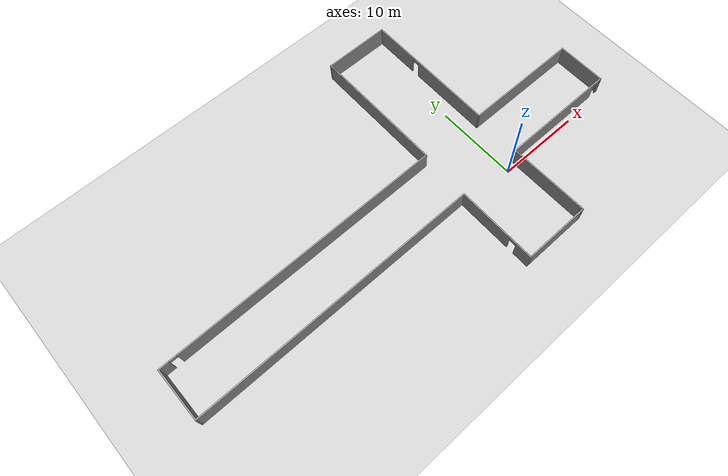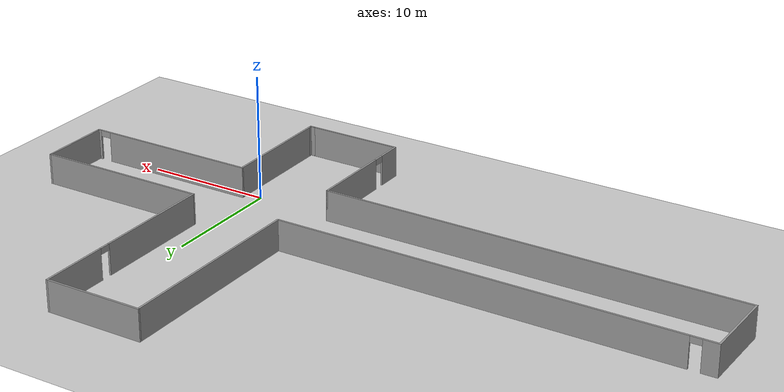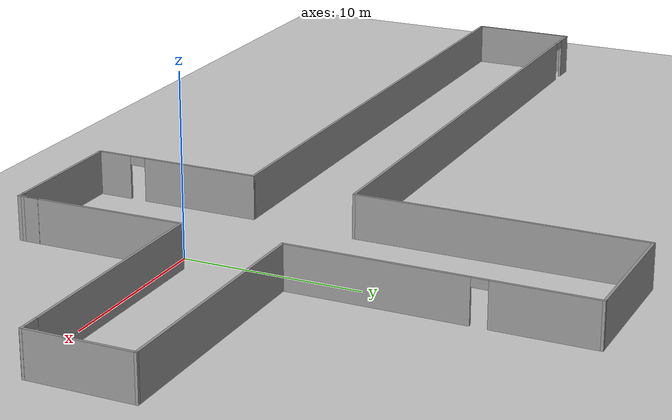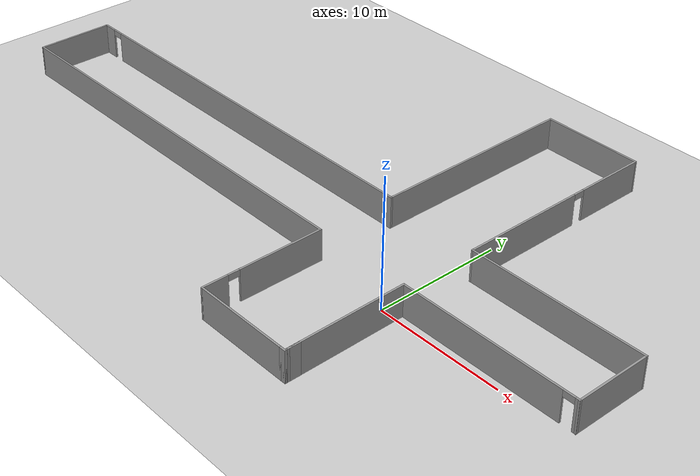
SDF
<sdf version="1.7">
 <world name="default">
  <light name="sun" type="directional">
   <pose>0 0 10 0 -0 0</pose>
   <diffuse>0.8 0.8 0.8 1</diffuse>
   <specular>0.2 0.2 0.2 1</specular>
   <attenuation>
    <range>1000</range>
    <constant>0.9</constant>
    <linear>0.01</linear>
    <quadratic>0.001</quadratic>
   </attenuation>
   <direction>-0.5 0.1 -0.9</direction>
   <spot><inner_angle>0</inner_angle><outer_angle>0</outer_angle><falloff>0</falloff></spot>
  </light>
  <model name="ground_plane">
   <static>1</static>
   <link name="link">
    <collision name="collision">
     <geometry><plane><normal>0 0 1</normal><size>100 100</size></plane></geometry>
     <surface><friction><ode><mu>100</mu><mu2>50</mu2></ode></friction></surface>
    </collision>
    <visual name="visual">
     <cast_shadows>0</cast_shadows>
     <geometry><plane><normal>0 0 1</normal><size>100 100</size></plane></geometry>
     <material>
      <script><uri>file://media/materials/scripts/gazebo.material</uri><name>Gazebo/Grey</name></script>
     </material>
    </visual>
   </link>
  </model>
  <gravity>0 0 -9.8</gravity>
  <magnetic_field>6e-06 2.3e-05 -4.2e-05</magnetic_field>
  <atmosphere type="adiabatic"/>
  <physics type="ode">
   <max_step_size>0.001</max_step_size>
   <real_time_factor>1</real_time_factor>
   <real_time_update_rate>1000</real_time_update_rate>
  </physics>
  <scene><ambient>0.4 0.4 0.4 1</ambient><background>0.7 0.7 0.7 1</background><shadows>1</shadows></scene>
  <audio><device>default</device></audio>
  <spherical_coordinates>
   <surface_model>EARTH_WGS84</surface_model>
   <latitude_deg>0</latitude_deg>
   <longitude_deg>0</longitude_deg>
   <elevation>0</elevation>
   <heading_deg>0</heading_deg>
  </spherical_coordinates>
  <model name="Untitled">
   <pose>-12.635 6.88 0 0 -0 0</pose>
   <link name="Wall_10">
    <collision name="Wall_10_Collision">
     <geometry><box><size>6.25 0.15 2.5</size></box></geometry>
     <pose>0 0 1.25 0 -0 0</pose>
    </collision>
    <visual name="Wall_10_Visual">
     <pose>0 0 1.25 0 -0 0</pose>
     <geometry><box><size>6.25 0.15 2.5</size></box></geometry>
     <material>
      <script><uri>file://media/materials/scripts/gazebo.material</uri><name>Gazebo/Grey</name></script>
      <ambient>1 1 1 1</ambient>
     </material>
     <meta><layer>0</layer></meta>
    </visual>
    <pose>-28.025 -3.25 0 0 -0 -1.5708</pose>
   </link>
   <link name="Wall_11">
    <collision name="Wall_11_Collision">
     <geometry><box><size>34.25 0.15 2.5</size></box></geometry>
     <pose>0 0 1.25 0 -0 0</pose>
    </collision>
    <visual name="Wall_11_Visual">
     <pose>0 0 1.25 0 -0 0</pose>
     <geometry><box><size>34.25 0.15 2.5</size></box></geometry>
     <material>
      <script><uri>file://media/materials/scripts/gazebo.material</uri><name>Gazebo/Grey</name></script>
      <ambient>1 1 1 1</ambient>
     </material>
     <meta><layer>0</layer></meta>
    </visual>
    <pose>-10.975 -6.3 0 0 -0 0</pose>
   </link>
   <link name="Wall_12">
    <pose>6.075 -11.1 0 0 -0 -1.5708</pose>
    <visual name="Wall_12_Visual_0">
     <pose>-1.47904 0 1.25 0 -0 0</pose>
     <geometry><box><size>6.79192 0.15 2.5</size></box></geometry>
     <material>
      <script><uri>file://media/materials/scripts/gazebo.material</uri><name>Gazebo/Grey</name></script>
      <ambient>1 1 1 1</ambient>
     </material>
     <meta><layer>0</layer></meta>
    </visual>
    <collision name="Wall_12_Collision_0">
     <geometry><box><size>6.79192 0.15 2.5</size></box></geometry>
     <pose>-1.47904 0 1.25 0 -0 0</pose>
    </collision>
    <visual name="Wall_12_Visual_1">
     <pose>3.84596 0 1.25 0 -0 0</pose>
     <geometry><box><size>2.05808 0.15 2.5</size></box></geometry>
     <material>
      <script><uri>file://media/materials/scripts/gazebo.material</uri><name>Gazebo/Grey</name></script>
      <ambient>1 1 1 1</ambient>
     </material>
     <meta><layer>0</layer></meta>
    </visual>
    <collision name="Wall_12_Collision_1">
     <geometry><box><size>2.05808 0.15 2.5</size></box></geometry>
     <pose>3.84596 0 1.25 0 -0 0</pose>
    </collision>
    <visual name="Wall_12_Visual_2">
     <pose>2.36692 0 2.25 0 -0 0</pose>
     <geometry><box><size>0.9 0.15 0.5</size></box></geometry>
     <material>
      <script><uri>file://media/materials/scripts/gazebo.material</uri><name>Gazebo/Grey</name></script>
      <ambient>1 1 1 1</ambient>
     </material>
     <meta><layer>0</layer></meta>
    </visual>
    <collision name="Wall_12_Collision_2">
     <geometry><box><size>0.9 0.15 0.5</size></box></geometry>
     <pose>2.36692 0 2.25 0 -0 0</pose>
    </collision>
   </link>
   <link name="Wall_13">
    <collision name="Wall_13_Collision">
     <geometry><box><size>7.75 0.15 2.5</size></box></geometry>
     <pose>0 0 1.25 0 -0 0</pose>
    </collision>
    <visual name="Wall_13_Visual">
     <pose>0 0 1.25 0 -0 0</pose>
     <geometry><box><size>7.75 0.15 2.5</size></box></geometry>
     <material>
      <script><uri>file://media/materials/scripts/gazebo.material</uri><name>Gazebo/Grey</name></script>
      <ambient>1 1 1 1</ambient>
     </material>
     <meta><layer>0</layer></meta>
    </visual>
    <pose>9.875 -15.9 0 0 -0 0</pose>
   </link>
   <link name="Wall_14">
    <collision name="Wall_14_Collision">
     <geometry><box><size>0.5 0.15 2.5</size></box></geometry>
     <pose>0 0 1.25 0 -0 0</pose>
    </collision>
    <visual name="Wall_14_Visual">
     <pose>0 0 1.25 0 -0 0</pose>
     <geometry><box><size>0.5 0.15 2.5</size></box></geometry>
     <material>
      <script><uri>file://media/materials/scripts/gazebo.material</uri><name>Gazebo/Grey</name></script>
      <ambient>1 1 1 1</ambient>
     </material>
     <meta><layer>0</layer></meta>
    </visual>
    <pose>13.85 -15.9 0 0 -0 0</pose>
   </link>
   <link name="Wall_15">
    <collision name="Wall_15_Collision">
     <geometry><box><size>1.25 0.15 2.5</size></box></geometry>
     <pose>0 0 1.25 0 -0 0</pose>
    </collision>
    <visual name="Wall_15_Visual">
     <pose>0 0 1.25 0 -0 0</pose>
     <geometry><box><size>1.25 0.15 2.5</size></box></geometry>
     <material>
      <script><uri>file://media/materials/scripts/gazebo.material</uri><name>Gazebo/Grey</name></script>
      <ambient>1 1 1 1</ambient>
     </material>
     <meta><layer>0</layer></meta>
    </visual>
    <pose>14.025 -15.35 0 0 -0 1.5708</pose>
   </link>
   <link name="Wall_2">
    <collision name="Wall_2_Collision">
     <geometry><box><size>9.54185 0.15 2.5</size></box></geometry>
     <pose>0 0 1.25 0 -0 0</pose>
    </collision>
    <visual name="Wall_2_Visual">
     <pose>0 0 1.25 0 -0 0</pose>
     <geometry><box><size>9.54185 0.15 2.5</size></box></geometry>
     <material>
      <script><uri>file://media/materials/scripts/gazebo.material</uri><name>Gazebo/Grey</name></script>
      <ambient>1 1 1 1</ambient>
     </material>
     <meta><layer>0</layer></meta>
    </visual>
    <pose>13.9756 -10.9952 0 0 -0 1.58157</pose>
   </link>
   <link name="Wall_4">
    <collision name="Wall_4_Collision">
     <geometry><box><size>6 0.15 2.5</size></box></geometry>
     <pose>0 0 1.25 0 -0 0</pose>
    </collision>
    <visual name="Wall_4_Visual">
     <pose>0 0 1.25 0 -0 0</pose>
     <geometry><box><size>6 0.15 2.5</size></box></geometry>
     <material>
      <script><uri>file://media/materials/scripts/gazebo.material</uri><name>Gazebo/Grey</name></script>
      <ambient>1 1 1 1</ambient>
     </material>
     <meta><layer>0</layer></meta>
    </visual>
    <pose>28.025 -3.375 0 0 -0 1.5708</pose>
   </link>
   <link name="Wall_5">
    <collision name="Wall_5_Collision">
     <geometry><box><size>14 0.15 2.5</size></box></geometry>
     <pose>0 0 1.25 0 -0 0</pose>
    </collision>
    <visual name="Wall_5_Visual">
     <pose>0 0 1.25 0 -0 0</pose>
     <geometry><box><size>14 0.15 2.5</size></box></geometry>
     <material>
      <script><uri>file://media/materials/scripts/gazebo.material</uri><name>Gazebo/Grey</name></script>
      <ambient>1 1 1 1</ambient>
     </material>
     <meta><layer>0</layer></meta>
    </visual>
    <pose>21.1 -0.450001 0 0 -0 3.14159</pose>
   </link>
   <link name="Wall_6">
    <pose>14.175 7.725 0 0 -0 1.5708</pose>
    <visual name="Wall_6_Visual_0">
     <pose>-3.2824 0 1.25 0 -0 0</pose>
     <geometry><box><size>9.93521 0.15 2.5</size></box></geometry>
     <material>
      <script><uri>file://media/materials/scripts/gazebo.material</uri><name>Gazebo/Grey</name></script>
      <ambient>1 1 1 1</ambient>
     </material>
     <meta><layer>0</layer></meta>
    </visual>
    <collision name="Wall_6_Collision_0">
     <geometry><box><size>9.93521 0.15 2.5</size></box></geometry>
     <pose>-3.2824 0 1.25 0 -0 0</pose>
    </collision>
    <visual name="Wall_6_Visual_1">
     <pose>5.41761 0 1.25 0 -0 0</pose>
     <geometry><box><size>5.66479 0.15 2.5</size></box></geometry>
     <material>
      <script><uri>file://media/materials/scripts/gazebo.material</uri><name>Gazebo/Grey</name></script>
      <ambient>1 1 1 1</ambient>
     </material>
     <meta><layer>0</layer></meta>
    </visual>
    <collision name="Wall_6_Collision_1">
     <geometry><box><size>5.66479 0.15 2.5</size></box></geometry>
     <pose>5.41761 0 1.25 0 -0 0</pose>
    </collision>
    <visual name="Wall_6_Visual_2">
     <pose>2.13521 0 2.25 0 -0 0</pose>
     <geometry><box><size>0.9 0.15 0.5</size></box></geometry>
     <material>
      <script><uri>file://media/materials/scripts/gazebo.material</uri><name>Gazebo/Grey</name></script>
      <ambient>1 1 1 1</ambient>
     </material>
     <meta><layer>0</layer></meta>
    </visual>
    <collision name="Wall_6_Collision_2">
     <geometry><box><size>0.9 0.15 0.5</size></box></geometry>
     <pose>2.13521 0 2.25 0 -0 0</pose>
    </collision>
   </link>
   <link name="Wall_7">
    <collision name="Wall_7_Collision">
     <geometry><box><size>8 0.15 2.5</size></box></geometry>
     <pose>0 0 1.25 0 -0 0</pose>
    </collision>
    <visual name="Wall_7_Visual">
     <pose>0 0 1.25 0 -0 0</pose>
     <geometry><box><size>8 0.15 2.5</size></box></geometry>
     <material>
      <script><uri>file://media/materials/scripts/gazebo.material</uri><name>Gazebo/Grey</name></script>
      <ambient>1 1 1 1</ambient>
     </material>
     <meta><layer>0</layer></meta>
    </visual>
    <pose>10.25 15.9 0 0 -0 3.14159</pose>
   </link>
   <link name="Wall_8">
    <collision name="Wall_8_Collision">
     <geometry><box><size>16.25 0.15 2.5</size></box></geometry>
     <pose>0 0 1.25 0 -0 0</pose>
    </collision>
    <visual name="Wall_8_Visual">
     <pose>0 0 1.25 0 -0 0</pose>
     <geometry><box><size>16.25 0.15 2.5</size></box></geometry>
     <material>
      <script><uri>file://media/materials/scripts/gazebo.material</uri><name>Gazebo/Grey</name></script>
      <ambient>1 1 1 1</ambient>
     </material>
     <meta><layer>0</layer></meta>
    </visual>
    <pose>6.325 7.85 0 0 -0 -1.5708</pose>
   </link>
   <link name="Wall_9">
    <pose>-10.85 -0.200001 0 0 -0 3.14159</pose>
    <visual name="Wall_9_Visual_0">
     <pose>-1.07326 0 1.25 0 -0 0</pose>
     <geometry><box><size>32.3535 0.15 2.5</size></box></geometry>
     <material>
      <script><uri>file://media/materials/scripts/gazebo.material</uri><name>Gazebo/Grey</name></script>
      <ambient>1 1 1 1</ambient>
     </material>
     <meta><layer>0</layer></meta>
    </visual>
    <collision name="Wall_9_Collision_0">
     <geometry><box><size>32.3535 0.15 2.5</size></box></geometry>
     <pose>-1.07326 0 1.25 0 -0 0</pose>
    </collision>
    <visual name="Wall_9_Visual_1">
     <pose>16.6267 0 1.25 0 -0 0</pose>
     <geometry><box><size>1.24653 0.15 2.5</size></box></geometry>
     <material>
      <script><uri>file://media/materials/scripts/gazebo.material</uri><name>Gazebo/Grey</name></script>
      <ambient>1 1 1 1</ambient>
     </material>
     <meta><layer>0</layer></meta>
    </visual>
    <collision name="Wall_9_Collision_1">
     <geometry><box><size>1.24653 0.15 2.5</size></box></geometry>
     <pose>16.6267 0 1.25 0 -0 0</pose>
    </collision>
    <visual name="Wall_9_Visual_2">
     <pose>15.5535 0 2.25 0 -0 0</pose>
     <geometry><box><size>0.9 0.15 0.5</size></box></geometry>
     <material>
      <script><uri>file://media/materials/scripts/gazebo.material</uri><name>Gazebo/Grey</name></script>
      <ambient>1 1 1 1</ambient>
     </material>
     <meta><layer>0</layer></meta>
    </visual>
    <collision name="Wall_9_Collision_2">
     <geometry><box><size>0.9 0.15 0.5</size></box></geometry>
     <pose>15.5535 0 2.25 0 -0 0</pose>
    </collision>
   </link>
   <static>1</static>
  </model>
  <model name="Untitled_2">
   <pose>7.73449 0.334754 0 0 -0 0</pose>
   <link name="Wall_9">
    <pose>0.604651 0.259754 0 0 -0 0</pose>
    <visual name="Wall_9_Visual_0">
     <pose>-0.63259 0 1.25 0 -0 0</pose>
     <geometry><box><size>12.9945 0.15 2.5</size></box></geometry>
     <material>
      <script><uri>file://media/materials/scripts/gazebo.material</uri><name>Gazebo/Grey</name></script>
      <ambient>1 1 1 1</ambient>
     </material>
     <meta><layer>0</layer></meta>
    </visual>
    <collision name="Wall_9_Collision_0">
     <geometry><box><size>12.9945 0.15 2.5</size></box></geometry>
     <pose>-0.63259 0 1.25 0 -0 0</pose>
    </collision>
    <visual name="Wall_9_Visual_1">
     <pose>6.94725 0 1.25 0 -0 0</pose>
     <geometry><box><size>0.365179 0.15 2.5</size></box></geometry>
     <material>
      <script><uri>file://media/materials/scripts/gazebo.material</uri><name>Gazebo/Grey</name></script>
      <ambient>1 1 1 1</ambient>
     </material>
     <meta><layer>0</layer></meta>
    </visual>
    <collision name="Wall_9_Collision_1">
     <geometry><box><size>0.365179 0.15 2.5</size></box></geometry>
     <pose>6.94725 0 1.25 0 -0 0</pose>
    </collision>
    <visual name="Wall_9_Visual_2">
     <pose>6.31466 0 2.25 0 -0 0</pose>
     <geometry><box><size>0.9 0.15 0.5</size></box></geometry>
     <material>
      <script><uri>file://media/materials/scripts/gazebo.material</uri><name>Gazebo/Grey</name></script>
      <ambient>1 1 1 1</ambient>
     </material>
     <meta><layer>0</layer></meta>
    </visual>
    <collision name="Wall_9_Collision_2">
     <geometry><box><size>0.9 0.15 0.5</size></box></geometry>
     <pose>6.31466 0 2.25 0 -0 0</pose>
    </collision>
   </link>
   <static>1</static>
  </model>
 </world>
</sdf>
